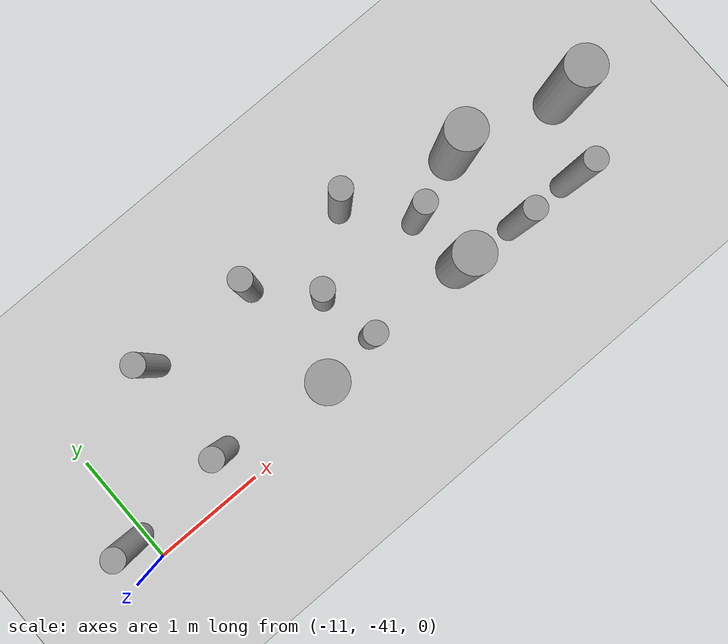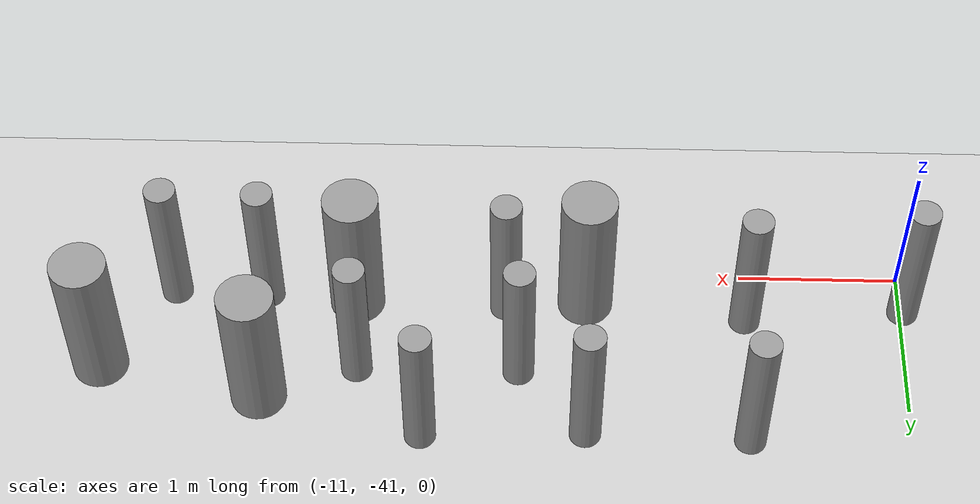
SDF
<sdf version="1.6">
 <world name="default">
  <model name="ground_plane">
   <static>1</static>
   <link name="link">
    <collision name="collision">
     <geometry><plane><normal>0 0 1</normal><size>100 100</size></plane></geometry>
     <surface><friction><ode><mu>100</mu><mu2>50</mu2></ode></friction></surface>
    </collision>
    <visual name="visual">
     <cast_shadows>0</cast_shadows>
     <geometry><plane><normal>0 0 1</normal><size>100 100</size></plane></geometry>
     <material>
      <script><uri>file://media/materials/scripts/gazebo.material</uri><name>Gazebo/Grey</name></script>
     </material>
    </visual>
   </link>
  </model>
  <model name="cyl_wall_clone_clone_4">
   <link name="link_0">
    <pose>-2.73893 -0.366465 0 0 -0 0</pose>
    <inertial>
     <mass>0.0374993</mass>
     <inertia>
      <ixx>0.00321281</ixx>
      <ixy>0</ixy>
      <ixz>0</ixz>
      <iyy>0.00321281</iyy>
      <iyz>0</iyz>
      <izz>0.000175774</izz>
     </inertia>
    </inertial>
    <visual name="visual">
     <geometry><cylinder><radius>0.0968661</radius><length>1</length></cylinder></geometry>
     <material>
      <lighting>1</lighting>
      <script><uri>file://media/materials/scripts/gazebo.material</uri><name>Gazebo/Grey</name></script>
      <ambient>0.3 0.3 0.3 1</ambient>
      <diffuse>0.7 0.7 0.7 1</diffuse>
      <specular>0.01 0.01 0.01 1</specular>
      <emissive>0 0 0 1</emissive>
     </material>
    </visual>
    <collision name="collision">
     <geometry><cylinder><radius>0.096866</radius><length>1</length></cylinder></geometry>
     <surface>
      <friction>
       <ode><mu>1</mu><mu2>1</mu2><fdir1>0 0 0</fdir1><slip1>0</slip1><slip2>0</slip2></ode>
       <torsional>
        <coefficient>1</coefficient>
        <patch_radius>0</patch_radius>
        <surface_radius>0</surface_radius>
        <use_patch_radius>1</use_patch_radius>
        <ode><slip>0</slip></ode>
       </torsional>
      </friction>
      <bounce><restitution_coefficient>0</restitution_coefficient><threshold>1e+06</threshold></bounce>
      <contact>
       <collide_without_contact>0</collide_without_contact>
       <collide_without_contact_bitmask>1</collide_without_contact_bitmask>
       <collide_bitmask>1</collide_bitmask>
       <ode>
        <soft_cfm>0</soft_cfm>
        <soft_erp>0.2</soft_erp>
        <kp>1e+13</kp>
        <kd>1</kd>
        <max_vel>0.01</max_vel>
        <min_depth>0</min_depth>
       </ode>
       <bullet>
        <split_impulse>1</split_impulse>
        <split_impulse_penetration_threshold>-0.01</split_impulse_penetration_threshold>
        <soft_cfm>0</soft_cfm>
        <soft_erp>0.2</soft_erp>
        <kp>1e+13</kp>
        <kd>1</kd>
       </bullet>
      </contact>
     </surface>
    </collision>
   </link>
   <link name="link_0_clone">
    <pose>-1.73893 0.61877 0 0 -0 0</pose>
    <inertial>
     <mass>0.0374993</mass>
     <inertia>
      <ixx>0.00321281</ixx>
      <ixy>0</ixy>
      <ixz>0</ixz>
      <iyy>0.00321281</iyy>
      <iyz>0</iyz>
      <izz>0.000175774</izz>
     </inertia>
    </inertial>
    <visual name="visual">
     <geometry><cylinder><radius>0.0968661</radius><length>1</length></cylinder></geometry>
     <material>
      <lighting>1</lighting>
      <script><uri>file://media/materials/scripts/gazebo.material</uri><name>Gazebo/Grey</name></script>
      <ambient>0.3 0.3 0.3 1</ambient>
      <diffuse>0.7 0.7 0.7 1</diffuse>
      <specular>0.01 0.01 0.01 1</specular>
      <emissive>0 0 0 1</emissive>
      <shader type="pixel"/>
     </material>
    </visual>
    <collision name="collision">
     <geometry><cylinder><radius>0.096866</radius><length>1</length></cylinder></geometry>
     <surface>
      <friction>
       <ode><mu>1</mu><mu2>1</mu2><fdir1>0 0 0</fdir1><slip1>0</slip1><slip2>0</slip2></ode>
       <torsional>
        <coefficient>1</coefficient>
        <patch_radius>0</patch_radius>
        <surface_radius>0</surface_radius>
        <use_patch_radius>1</use_patch_radius>
        <ode><slip>0</slip></ode>
       </torsional>
      </friction>
      <bounce><restitution_coefficient>0</restitution_coefficient><threshold>1e+06</threshold></bounce>
      <contact>
       <collide_without_contact>0</collide_without_contact>
       <collide_without_contact_bitmask>1</collide_without_contact_bitmask>
       <collide_bitmask>1</collide_bitmask>
       <ode>
        <soft_cfm>0</soft_cfm>
        <soft_erp>0.2</soft_erp>
        <kp>1e+13</kp>
        <kd>1</kd>
        <max_vel>0.01</max_vel>
        <min_depth>0</min_depth>
       </ode>
       <bullet>
        <split_impulse>1</split_impulse>
        <split_impulse_penetration_threshold>-0.01</split_impulse_penetration_threshold>
        <soft_cfm>0</soft_cfm>
        <soft_erp>0.2</soft_erp>
        <kp>1e+13</kp>
        <kd>1</kd>
       </bullet>
      </contact>
     </surface>
    </collision>
   </link>
   <link name="link_0_clone_clone">
    <pose>-0.327073 0.143919 0 0 -0 0</pose>
    <inertial>
     <mass>0.0374993</mass>
     <inertia>
      <ixx>0.00321281</ixx>
      <ixy>0</ixy>
      <ixz>0</ixz>
      <iyy>0.00321281</iyy>
      <iyz>0</iyz>
      <izz>0.000175774</izz>
     </inertia>
    </inertial>
    <visual name="visual">
     <geometry><cylinder><radius>0.0968661</radius><length>1</length></cylinder></geometry>
     <material>
      <lighting>1</lighting>
      <script><uri>file://media/materials/scripts/gazebo.material</uri><name>Gazebo/Grey</name></script>
      <ambient>0.3 0.3 0.3 1</ambient>
      <diffuse>0.7 0.7 0.7 1</diffuse>
      <specular>0.01 0.01 0.01 1</specular>
      <emissive>0 0 0 1</emissive>
      <shader type="pixel"/>
     </material>
    </visual>
    <collision name="collision">
     <geometry><cylinder><radius>0.096866</radius><length>1</length></cylinder></geometry>
     <surface>
      <friction>
       <ode><mu>1</mu><mu2>1</mu2><fdir1>0 0 0</fdir1><slip1>0</slip1><slip2>0</slip2></ode>
       <torsional>
        <coefficient>1</coefficient>
        <patch_radius>0</patch_radius>
        <surface_radius>0</surface_radius>
        <use_patch_radius>1</use_patch_radius>
        <ode><slip>0</slip></ode>
       </torsional>
      </friction>
      <bounce><restitution_coefficient>0</restitution_coefficient><threshold>1e+06</threshold></bounce>
      <contact>
       <collide_without_contact>0</collide_without_contact>
       <collide_without_contact_bitmask>1</collide_without_contact_bitmask>
       <collide_bitmask>1</collide_bitmask>
       <ode>
        <soft_cfm>0</soft_cfm>
        <soft_erp>0.2</soft_erp>
        <kp>1e+13</kp>
        <kd>1</kd>
        <max_vel>0.01</max_vel>
        <min_depth>0</min_depth>
       </ode>
       <bullet>
        <split_impulse>1</split_impulse>
        <split_impulse_penetration_threshold>-0.01</split_impulse_penetration_threshold>
        <soft_cfm>0</soft_cfm>
        <soft_erp>0.2</soft_erp>
        <kp>1e+13</kp>
        <kd>1</kd>
       </bullet>
      </contact>
     </surface>
    </collision>
   </link>
   <link name="link_0_clone_clone_0">
    <pose>1.26107 -0.419359 0 0 -0 0</pose>
    <inertial>
     <mass>0.0374993</mass>
     <inertia>
      <ixx>0.00321281</ixx>
      <ixy>0</ixy>
      <ixz>0</ixz>
      <iyy>0.00321281</iyy>
      <iyz>0</iyz>
      <izz>0.000175774</izz>
     </inertia>
    </inertial>
    <visual name="visual">
     <geometry><cylinder><radius>0.0968661</radius><length>1</length></cylinder></geometry>
     <material>
      <lighting>1</lighting>
      <script><uri>file://media/materials/scripts/gazebo.material</uri><name>Gazebo/Grey</name></script>
      <ambient>0.3 0.3 0.3 1</ambient>
      <diffuse>0.7 0.7 0.7 1</diffuse>
      <specular>0.01 0.01 0.01 1</specular>
      <emissive>0 0 0 1</emissive>
      <shader type="pixel"/>
     </material>
    </visual>
    <collision name="collision">
     <geometry><cylinder><radius>0.096866</radius><length>1</length></cylinder></geometry>
     <surface>
      <friction>
       <ode><mu>1</mu><mu2>1</mu2><fdir1>0 0 0</fdir1><slip1>0</slip1><slip2>0</slip2></ode>
       <torsional>
        <coefficient>1</coefficient>
        <patch_radius>0</patch_radius>
        <surface_radius>0</surface_radius>
        <use_patch_radius>1</use_patch_radius>
        <ode><slip>0</slip></ode>
       </torsional>
      </friction>
      <bounce><restitution_coefficient>0</restitution_coefficient><threshold>1e+06</threshold></bounce>
      <contact>
       <collide_without_contact>0</collide_without_contact>
       <collide_without_contact_bitmask>1</collide_without_contact_bitmask>
       <collide_bitmask>1</collide_bitmask>
       <ode>
        <soft_cfm>0</soft_cfm>
        <soft_erp>0.2</soft_erp>
        <kp>1e+13</kp>
        <kd>1</kd>
        <max_vel>0.01</max_vel>
        <min_depth>0</min_depth>
       </ode>
       <bullet>
        <split_impulse>1</split_impulse>
        <split_impulse_penetration_threshold>-0.01</split_impulse_penetration_threshold>
        <soft_cfm>0</soft_cfm>
        <soft_erp>0.2</soft_erp>
        <kp>1e+13</kp>
        <kd>1</kd>
       </bullet>
      </contact>
     </surface>
    </collision>
   </link>
   <link name="link_0_clone_clone_1">
    <pose>-1.73893 -0.277168 0 0 -0 0</pose>
    <inertial>
     <mass>0.0374993</mass>
     <inertia>
      <ixx>0.00321281</ixx>
      <ixy>0</ixy>
      <ixz>0</ixz>
      <iyy>0.00321281</iyy>
      <iyz>0</iyz>
      <izz>0.000175774</izz>
     </inertia>
    </inertial>
    <visual name="visual">
     <geometry><cylinder><radius>0.0968661</radius><length>1</length></cylinder></geometry>
     <material>
      <lighting>1</lighting>
      <script><uri>file://media/materials/scripts/gazebo.material</uri><name>Gazebo/Grey</name></script>
      <ambient>0.3 0.3 0.3 1</ambient>
      <diffuse>0.7 0.7 0.7 1</diffuse>
      <specular>0.01 0.01 0.01 1</specular>
      <emissive>0 0 0 1</emissive>
      <shader type="pixel"/>
     </material>
    </visual>
    <collision name="collision">
     <geometry><cylinder><radius>0.096866</radius><length>1</length></cylinder></geometry>
     <surface>
      <friction>
       <ode><mu>1</mu><mu2>1</mu2><fdir1>0 0 0</fdir1><slip1>0</slip1><slip2>0</slip2></ode>
       <torsional>
        <coefficient>1</coefficient>
        <patch_radius>0</patch_radius>
        <surface_radius>0</surface_radius>
        <use_patch_radius>1</use_patch_radius>
        <ode><slip>0</slip></ode>
       </torsional>
      </friction>
      <bounce><restitution_coefficient>0</restitution_coefficient><threshold>1e+06</threshold></bounce>
      <contact>
       <collide_without_contact>0</collide_without_contact>
       <collide_without_contact_bitmask>1</collide_without_contact_bitmask>
       <collide_bitmask>1</collide_bitmask>
       <ode>
        <soft_cfm>0</soft_cfm>
        <soft_erp>0.2</soft_erp>
        <kp>1e+13</kp>
        <kd>1</kd>
        <max_vel>0.01</max_vel>
        <min_depth>0</min_depth>
       </ode>
       <bullet>
        <split_impulse>1</split_impulse>
        <split_impulse_penetration_threshold>-0.01</split_impulse_penetration_threshold>
        <soft_cfm>0</soft_cfm>
        <soft_erp>0.2</soft_erp>
        <kp>1e+13</kp>
        <kd>1</kd>
       </bullet>
      </contact>
     </surface>
    </collision>
   </link>
   <link name="link_0_clone_clone_2">
    <pose>-0.738934 0.593961 0 0 -0 0</pose>
    <inertial>
     <mass>0.0374993</mass>
     <inertia>
      <ixx>0.00321281</ixx>
      <ixy>0</ixy>
      <ixz>0</ixz>
      <iyy>0.00321281</iyy>
      <iyz>0</iyz>
      <izz>0.000175774</izz>
     </inertia>
    </inertial>
    <visual name="visual">
     <geometry><cylinder><radius>0.0968661</radius><length>1</length></cylinder></geometry>
     <material>
      <lighting>1</lighting>
      <script><uri>file://media/materials/scripts/gazebo.material</uri><name>Gazebo/Grey</name></script>
      <ambient>0.3 0.3 0.3 1</ambient>
      <diffuse>0.7 0.7 0.7 1</diffuse>
      <specular>0.01 0.01 0.01 1</specular>
      <emissive>0 0 0 1</emissive>
      <shader type="pixel"/>
     </material>
    </visual>
    <collision name="collision">
     <geometry><cylinder><radius>0.096866</radius><length>1</length></cylinder></geometry>
     <surface>
      <friction>
       <ode><mu>1</mu><mu2>1</mu2><fdir1>0 0 0</fdir1><slip1>0</slip1><slip2>0</slip2></ode>
       <torsional>
        <coefficient>1</coefficient>
        <patch_radius>0</patch_radius>
        <surface_radius>0</surface_radius>
        <use_patch_radius>1</use_patch_radius>
        <ode><slip>0</slip></ode>
       </torsional>
      </friction>
      <bounce><restitution_coefficient>0</restitution_coefficient><threshold>1e+06</threshold></bounce>
      <contact>
       <collide_without_contact>0</collide_without_contact>
       <collide_without_contact_bitmask>1</collide_without_contact_bitmask>
       <collide_bitmask>1</collide_bitmask>
       <ode>
        <soft_cfm>0</soft_cfm>
        <soft_erp>0.2</soft_erp>
        <kp>1e+13</kp>
        <kd>1</kd>
        <max_vel>0.01</max_vel>
        <min_depth>0</min_depth>
       </ode>
       <bullet>
        <split_impulse>1</split_impulse>
        <split_impulse_penetration_threshold>-0.01</split_impulse_penetration_threshold>
        <soft_cfm>0</soft_cfm>
        <soft_erp>0.2</soft_erp>
        <kp>1e+13</kp>
        <kd>1</kd>
       </bullet>
      </contact>
     </surface>
    </collision>
   </link>
   <link name="link_0_clone_clone_3">
    <pose>0.261066 0.624849 0 0 -0 0</pose>
    <inertial>
     <mass>0.0374993</mass>
     <inertia>
      <ixx>0.00321281</ixx>
      <ixy>0</ixy>
      <ixz>0</ixz>
      <iyy>0.00321281</iyy>
      <iyz>0</iyz>
      <izz>0.000175774</izz>
     </inertia>
    </inertial>
    <visual name="visual">
     <geometry><cylinder><radius>0.0968661</radius><length>1</length></cylinder></geometry>
     <material>
      <lighting>1</lighting>
      <script><uri>file://media/materials/scripts/gazebo.material</uri><name>Gazebo/Grey</name></script>
      <ambient>0.3 0.3 0.3 1</ambient>
      <diffuse>0.7 0.7 0.7 1</diffuse>
      <specular>0.01 0.01 0.01 1</specular>
      <emissive>0 0 0 1</emissive>
      <shader type="pixel"/>
     </material>
    </visual>
    <collision name="collision">
     <geometry><cylinder><radius>0.096866</radius><length>1</length></cylinder></geometry>
     <surface>
      <friction>
       <ode><mu>1</mu><mu2>1</mu2><fdir1>0 0 0</fdir1><slip1>0</slip1><slip2>0</slip2></ode>
       <torsional>
        <coefficient>1</coefficient>
        <patch_radius>0</patch_radius>
        <surface_radius>0</surface_radius>
        <use_patch_radius>1</use_patch_radius>
        <ode><slip>0</slip></ode>
       </torsional>
      </friction>
      <bounce><restitution_coefficient>0</restitution_coefficient><threshold>1e+06</threshold></bounce>
      <contact>
       <collide_without_contact>0</collide_without_contact>
       <collide_without_contact_bitmask>1</collide_without_contact_bitmask>
       <collide_bitmask>1</collide_bitmask>
       <ode>
        <soft_cfm>0</soft_cfm>
        <soft_erp>0.2</soft_erp>
        <kp>1e+13</kp>
        <kd>1</kd>
        <max_vel>0.01</max_vel>
        <min_depth>0</min_depth>
       </ode>
       <bullet>
        <split_impulse>1</split_impulse>
        <split_impulse_penetration_threshold>-0.01</split_impulse_penetration_threshold>
        <soft_cfm>0</soft_cfm>
        <soft_erp>0.2</soft_erp>
        <kp>1e+13</kp>
        <kd>1</kd>
       </bullet>
      </contact>
     </surface>
    </collision>
   </link>
   <link name="link_0_clone_clone_4">
    <pose>-0.239049 -0.353105 0 0 -0 0</pose>
    <inertial>
     <mass>0.0374993</mass>
     <inertia>
      <ixx>0.00321281</ixx>
      <ixy>0</ixy>
      <ixz>0</ixz>
      <iyy>0.00321281</iyy>
      <iyz>0</iyz>
      <izz>0.000175774</izz>
     </inertia>
    </inertial>
    <visual name="visual">
     <geometry><cylinder><radius>0.0968661</radius><length>1</length></cylinder></geometry>
     <material>
      <lighting>1</lighting>
      <script><uri>file://media/materials/scripts/gazebo.material</uri><name>Gazebo/Grey</name></script>
      <ambient>0.3 0.3 0.3 1</ambient>
      <diffuse>0.7 0.7 0.7 1</diffuse>
      <specular>0.01 0.01 0.01 1</specular>
      <emissive>0 0 0 1</emissive>
      <shader type="pixel"/>
     </material>
    </visual>
    <collision name="collision">
     <geometry><cylinder><radius>0.096866</radius><length>1</length></cylinder></geometry>
     <surface>
      <friction>
       <ode><mu>1</mu><mu2>1</mu2><fdir1>0 0 0</fdir1><slip1>0</slip1><slip2>0</slip2></ode>
       <torsional>
        <coefficient>1</coefficient>
        <patch_radius>0</patch_radius>
        <surface_radius>0</surface_radius>
        <use_patch_radius>1</use_patch_radius>
        <ode><slip>0</slip></ode>
       </torsional>
      </friction>
      <bounce><restitution_coefficient>0</restitution_coefficient><threshold>1e+06</threshold></bounce>
      <contact>
       <collide_without_contact>0</collide_without_contact>
       <collide_without_contact_bitmask>1</collide_without_contact_bitmask>
       <collide_bitmask>1</collide_bitmask>
       <ode>
        <soft_cfm>0</soft_cfm>
        <soft_erp>0.2</soft_erp>
        <kp>1e+13</kp>
        <kd>1</kd>
        <max_vel>0.01</max_vel>
        <min_depth>0</min_depth>
       </ode>
       <bullet>
        <split_impulse>1</split_impulse>
        <split_impulse_penetration_threshold>-0.01</split_impulse_penetration_threshold>
        <soft_cfm>0</soft_cfm>
        <soft_erp>0.2</soft_erp>
        <kp>1e+13</kp>
        <kd>1</kd>
       </bullet>
      </contact>
     </surface>
    </collision>
   </link>
   <link name="link_0_clone_clone_5">
    <pose>0.672792 0.143919 0 0 -0 0</pose>
    <inertial>
     <mass>0.0374993</mass>
     <inertia>
      <ixx>0.00321281</ixx>
      <ixy>0</ixy>
      <ixz>0</ixz>
      <iyy>0.00321281</iyy>
      <iyz>0</iyz>
      <izz>0.000175774</izz>
     </inertia>
    </inertial>
    <visual name="visual">
     <geometry><cylinder><radius>0.0968661</radius><length>1</length></cylinder></geometry>
     <material>
      <lighting>1</lighting>
      <script><uri>file://media/materials/scripts/gazebo.material</uri><name>Gazebo/Grey</name></script>
      <ambient>0.3 0.3 0.3 1</ambient>
      <diffuse>0.7 0.7 0.7 1</diffuse>
      <specular>0.01 0.01 0.01 1</specular>
      <emissive>0 0 0 1</emissive>
      <shader type="pixel"/>
     </material>
    </visual>
    <collision name="collision">
     <geometry><cylinder><radius>0.096866</radius><length>1</length></cylinder></geometry>
     <surface>
      <friction>
       <ode><mu>1</mu><mu2>1</mu2><fdir1>0 0 0</fdir1><slip1>0</slip1><slip2>0</slip2></ode>
       <torsional>
        <coefficient>1</coefficient>
        <patch_radius>0</patch_radius>
        <surface_radius>0</surface_radius>
        <use_patch_radius>1</use_patch_radius>
        <ode><slip>0</slip></ode>
       </torsional>
      </friction>
      <bounce><restitution_coefficient>0</restitution_coefficient><threshold>1e+06</threshold></bounce>
      <contact>
       <collide_without_contact>0</collide_without_contact>
       <collide_without_contact_bitmask>1</collide_without_contact_bitmask>
       <collide_bitmask>1</collide_bitmask>
       <ode>
        <soft_cfm>0</soft_cfm>
        <soft_erp>0.2</soft_erp>
        <kp>1e+13</kp>
        <kd>1</kd>
        <max_vel>0.01</max_vel>
        <min_depth>0</min_depth>
       </ode>
       <bullet>
        <split_impulse>1</split_impulse>
        <split_impulse_penetration_threshold>-0.01</split_impulse_penetration_threshold>
        <soft_cfm>0</soft_cfm>
        <soft_erp>0.2</soft_erp>
        <kp>1e+13</kp>
        <kd>1</kd>
       </bullet>
      </contact>
     </surface>
    </collision>
   </link>
   <link name="link_0_clone_clone_6">
    <pose>1.84596 -0.433423 0 0 -0 0</pose>
    <inertial>
     <mass>0.0374993</mass>
     <inertia>
      <ixx>0.00321281</ixx>
      <ixy>0</ixy>
      <ixz>0</ixz>
      <iyy>0.00321281</iyy>
      <iyz>0</iyz>
      <izz>0.000175774</izz>
     </inertia>
    </inertial>
    <visual name="visual">
     <geometry><cylinder><radius>0.0968661</radius><length>1</length></cylinder></geometry>
     <material>
      <lighting>1</lighting>
      <script><uri>file://media/materials/scripts/gazebo.material</uri><name>Gazebo/Grey</name></script>
      <ambient>0.3 0.3 0.3 1</ambient>
      <diffuse>0.7 0.7 0.7 1</diffuse>
      <specular>0.01 0.01 0.01 1</specular>
      <emissive>0 0 0 1</emissive>
      <shader type="pixel"/>
     </material>
    </visual>
    <collision name="collision">
     <geometry><cylinder><radius>0.096866</radius><length>1</length></cylinder></geometry>
     <surface>
      <friction>
       <ode><mu>1</mu><mu2>1</mu2><fdir1>0 0 0</fdir1><slip1>0</slip1><slip2>0</slip2></ode>
       <torsional>
        <coefficient>1</coefficient>
        <patch_radius>0</patch_radius>
        <surface_radius>0</surface_radius>
        <use_patch_radius>1</use_patch_radius>
        <ode><slip>0</slip></ode>
       </torsional>
      </friction>
      <bounce><restitution_coefficient>0</restitution_coefficient><threshold>1e+06</threshold></bounce>
      <contact>
       <collide_without_contact>0</collide_without_contact>
       <collide_without_contact_bitmask>1</collide_without_contact_bitmask>
       <collide_bitmask>1</collide_bitmask>
       <ode>
        <soft_cfm>0</soft_cfm>
        <soft_erp>0.2</soft_erp>
        <kp>1e+13</kp>
        <kd>1</kd>
        <max_vel>0.01</max_vel>
        <min_depth>0</min_depth>
       </ode>
       <bullet>
        <split_impulse>1</split_impulse>
        <split_impulse_penetration_threshold>-0.01</split_impulse_penetration_threshold>
        <soft_cfm>0</soft_cfm>
        <soft_erp>0.2</soft_erp>
        <kp>1e+13</kp>
        <kd>1</kd>
       </bullet>
      </contact>
     </surface>
    </collision>
   </link>
   <link name="link_1">
    <pose>-0.738934 -0.397931 0 0 -0 0</pose>
    <inertial>
     <mass>0.117398</mass>
     <inertia>
      <ixx>0.0106445</ixx>
      <ixy>0</ixy>
      <ixz>0</ixz>
      <iyy>0.0106445</iyy>
      <iyz>0</iyz>
      <izz>0.00172278</izz>
     </inertia>
    </inertial>
    <visual name="visual">
     <geometry><cylinder><radius>0.171317</radius><length>1</length></cylinder></geometry>
     <material>
      <lighting>1</lighting>
      <script><uri>file://media/materials/scripts/gazebo.material</uri><name>Gazebo/Grey</name></script>
      <ambient>0.3 0.3 0.3 1</ambient>
      <diffuse>0.7 0.7 0.7 1</diffuse>
      <specular>0.01 0.01 0.01 1</specular>
      <emissive>0 0 0 1</emissive>
     </material>
    </visual>
    <collision name="collision">
     <geometry><cylinder><radius>0.171317</radius><length>1</length></cylinder></geometry>
     <surface>
      <friction>
       <ode><mu>1</mu><mu2>1</mu2><fdir1>0 0 0</fdir1><slip1>0</slip1><slip2>0</slip2></ode>
       <torsional>
        <coefficient>1</coefficient>
        <patch_radius>0</patch_radius>
        <surface_radius>0</surface_radius>
        <use_patch_radius>1</use_patch_radius>
        <ode><slip>0</slip></ode>
       </torsional>
      </friction>
      <bounce><restitution_coefficient>0</restitution_coefficient><threshold>1e+06</threshold></bounce>
      <contact>
       <collide_without_contact>0</collide_without_contact>
       <collide_without_contact_bitmask>1</collide_without_contact_bitmask>
       <collide_bitmask>1</collide_bitmask>
       <ode>
        <soft_cfm>0</soft_cfm>
        <soft_erp>0.2</soft_erp>
        <kp>1e+13</kp>
        <kd>1</kd>
        <max_vel>0.01</max_vel>
        <min_depth>0</min_depth>
       </ode>
       <bullet>
        <split_impulse>1</split_impulse>
        <split_impulse_penetration_threshold>-0.01</split_impulse_penetration_threshold>
        <soft_cfm>0</soft_cfm>
        <soft_erp>0.2</soft_erp>
        <kp>1e+13</kp>
        <kd>1</kd>
       </bullet>
      </contact>
     </surface>
    </collision>
   </link>
   <link name="link_1_clone">
    <pose>0.697784 -0.380861 0 0 -0 0</pose>
    <inertial>
     <mass>0.117398</mass>
     <inertia>
      <ixx>0.0106445</ixx>
      <ixy>0</ixy>
      <ixz>0</ixz>
      <iyy>0.0106445</iyy>
      <iyz>0</iyz>
      <izz>0.00172278</izz>
     </inertia>
    </inertial>
    <visual name="visual">
     <geometry><cylinder><radius>0.171317</radius><length>1</length></cylinder></geometry>
     <material>
      <lighting>1</lighting>
      <script><uri>file://media/materials/scripts/gazebo.material</uri><name>Gazebo/Grey</name></script>
      <ambient>0.3 0.3 0.3 1</ambient>
      <diffuse>0.7 0.7 0.7 1</diffuse>
      <specular>0.01 0.01 0.01 1</specular>
      <emissive>0 0 0 1</emissive>
      <shader type="pixel"/>
     </material>
    </visual>
    <collision name="collision">
     <geometry><cylinder><radius>0.171317</radius><length>1</length></cylinder></geometry>
     <surface>
      <friction>
       <ode><mu>1</mu><mu2>1</mu2><fdir1>0 0 0</fdir1><slip1>0</slip1><slip2>0</slip2></ode>
       <torsional>
        <coefficient>1</coefficient>
        <patch_radius>0</patch_radius>
        <surface_radius>0</surface_radius>
        <use_patch_radius>1</use_patch_radius>
        <ode><slip>0</slip></ode>
       </torsional>
      </friction>
      <bounce><restitution_coefficient>0</restitution_coefficient><threshold>1e+06</threshold></bounce>
      <contact>
       <collide_without_contact>0</collide_without_contact>
       <collide_without_contact_bitmask>1</collide_without_contact_bitmask>
       <collide_bitmask>1</collide_bitmask>
       <ode>
        <soft_cfm>0</soft_cfm>
        <soft_erp>0.2</soft_erp>
        <kp>1e+13</kp>
        <kd>1</kd>
        <max_vel>0.01</max_vel>
        <min_depth>0</min_depth>
       </ode>
       <bullet>
        <split_impulse>1</split_impulse>
        <split_impulse_penetration_threshold>-0.01</split_impulse_penetration_threshold>
        <soft_cfm>0</soft_cfm>
        <soft_erp>0.2</soft_erp>
        <kp>1e+13</kp>
        <kd>1</kd>
       </bullet>
      </contact>
     </surface>
    </collision>
   </link>
   <link name="link_1_clone_0">
    <pose>1.26107 0.358974 0 0 -0 0</pose>
    <inertial>
     <mass>0.117398</mass>
     <inertia>
      <ixx>0.0106445</ixx>
      <ixy>0</ixy>
      <ixz>0</ixz>
      <iyy>0.0106445</iyy>
      <iyz>0</iyz>
      <izz>0.00172278</izz>
     </inertia>
    </inertial>
    <visual name="visual">
     <geometry><cylinder><radius>0.171317</radius><length>1</length></cylinder></geometry>
     <material>
      <lighting>1</lighting>
      <script><uri>file://media/materials/scripts/gazebo.material</uri><name>Gazebo/Grey</name></script>
      <ambient>0.3 0.3 0.3 1</ambient>
      <diffuse>0.7 0.7 0.7 1</diffuse>
      <specular>0.01 0.01 0.01 1</specular>
      <emissive>0 0 0 1</emissive>
      <shader type="pixel"/>
     </material>
    </visual>
    <collision name="collision">
     <geometry><cylinder><radius>0.171317</radius><length>1</length></cylinder></geometry>
     <surface>
      <friction>
       <ode><mu>1</mu><mu2>1</mu2><fdir1>0 0 0</fdir1><slip1>0</slip1><slip2>0</slip2></ode>
       <torsional>
        <coefficient>1</coefficient>
        <patch_radius>0</patch_radius>
        <surface_radius>0</surface_radius>
        <use_patch_radius>1</use_patch_radius>
        <ode><slip>0</slip></ode>
       </torsional>
      </friction>
      <bounce><restitution_coefficient>0</restitution_coefficient><threshold>1e+06</threshold></bounce>
      <contact>
       <collide_without_contact>0</collide_without_contact>
       <collide_without_contact_bitmask>1</collide_without_contact_bitmask>
       <collide_bitmask>1</collide_bitmask>
       <ode>
        <soft_cfm>0</soft_cfm>
        <soft_erp>0.2</soft_erp>
        <kp>1e+13</kp>
        <kd>1</kd>
        <max_vel>0.01</max_vel>
        <min_depth>0</min_depth>
       </ode>
       <bullet>
        <split_impulse>1</split_impulse>
        <split_impulse_penetration_threshold>-0.01</split_impulse_penetration_threshold>
        <soft_cfm>0</soft_cfm>
        <soft_erp>0.2</soft_erp>
        <kp>1e+13</kp>
        <kd>1</kd>
       </bullet>
      </contact>
     </surface>
    </collision>
   </link>
   <link name="link_1_clone_1">
    <pose>2.26107 0.143919 0 0 -0 0</pose>
    <inertial>
     <mass>0.117398</mass>
     <inertia>
      <ixx>0.0106445</ixx>
      <ixy>0</ixy>
      <ixz>0</ixz>
      <iyy>0.0106445</iyy>
      <iyz>0</iyz>
      <izz>0.00172278</izz>
     </inertia>
    </inertial>
    <visual name="visual">
     <geometry><cylinder><radius>0.171317</radius><length>1</length></cylinder></geometry>
     <material>
      <lighting>1</lighting>
      <script><uri>file://media/materials/scripts/gazebo.material</uri><name>Gazebo/Grey</name></script>
      <ambient>0.3 0.3 0.3 1</ambient>
      <diffuse>0.7 0.7 0.7 1</diffuse>
      <specular>0.01 0.01 0.01 1</specular>
      <emissive>0 0 0 1</emissive>
      <shader type="pixel"/>
     </material>
    </visual>
    <collision name="collision">
     <geometry><cylinder><radius>0.171317</radius><length>1</length></cylinder></geometry>
     <surface>
      <friction>
       <ode><mu>1</mu><mu2>1</mu2><fdir1>0 0 0</fdir1><slip1>0</slip1><slip2>0</slip2></ode>
       <torsional>
        <coefficient>1</coefficient>
        <patch_radius>0</patch_radius>
        <surface_radius>0</surface_radius>
        <use_patch_radius>1</use_patch_radius>
        <ode><slip>0</slip></ode>
       </torsional>
      </friction>
      <bounce><restitution_coefficient>0</restitution_coefficient><threshold>1e+06</threshold></bounce>
      <contact>
       <collide_without_contact>0</collide_without_contact>
       <collide_without_contact_bitmask>1</collide_without_contact_bitmask>
       <collide_bitmask>1</collide_bitmask>
       <ode>
        <soft_cfm>0</soft_cfm>
        <soft_erp>0.2</soft_erp>
        <kp>1e+13</kp>
        <kd>1</kd>
        <max_vel>0.01</max_vel>
        <min_depth>0</min_depth>
       </ode>
       <bullet>
        <split_impulse>1</split_impulse>
        <split_impulse_penetration_threshold>-0.01</split_impulse_penetration_threshold>
        <soft_cfm>0</soft_cfm>
        <soft_erp>0.2</soft_erp>
        <kp>1e+13</kp>
        <kd>1</kd>
       </bullet>
      </contact>
     </surface>
    </collision>
   </link>
   <static>1</static>
   <pose>-8.28016 -40.3844 0.5 0 -0 0</pose>
  </model>
 </world>
</sdf>
